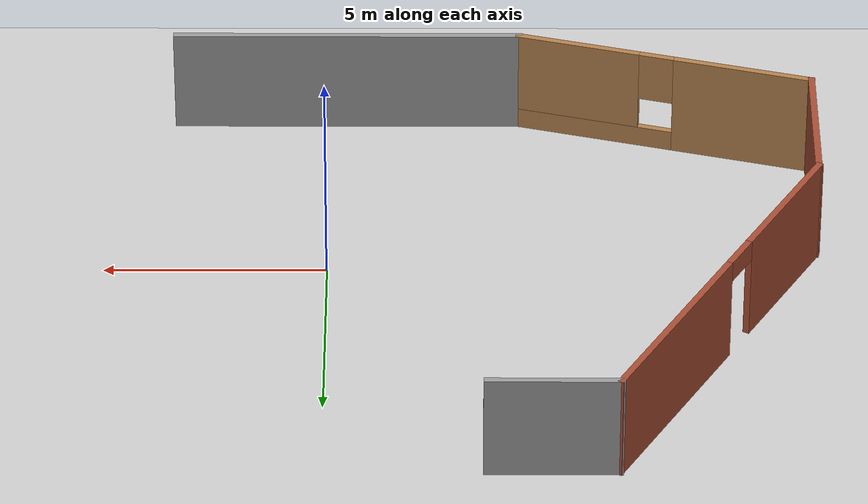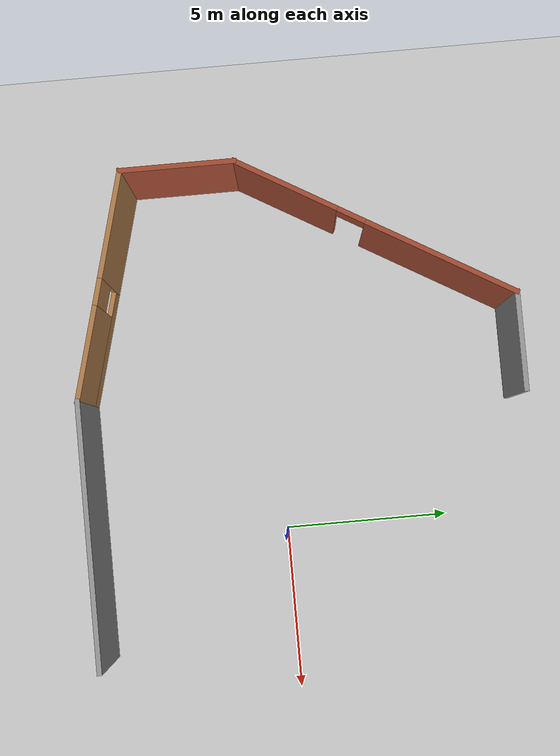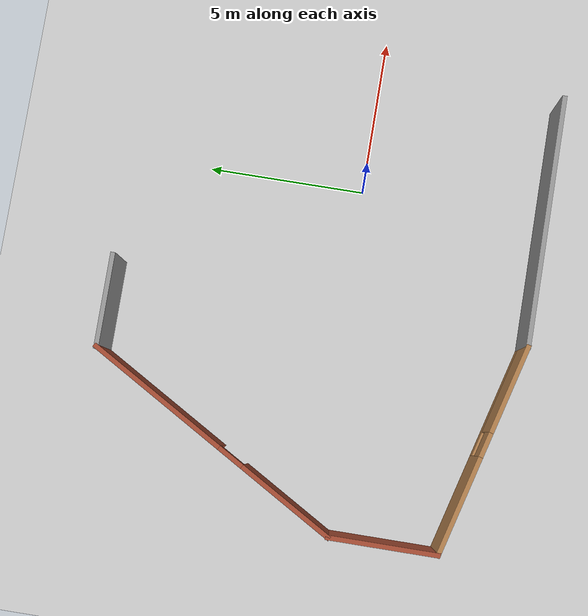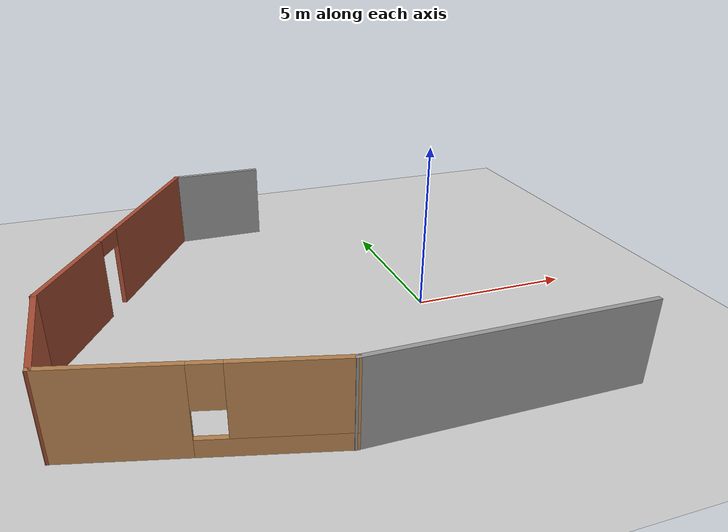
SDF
<sdf version="1.7">
 <world name="default">
  <light name="sun" type="directional">
   <pose>0 0 10 0 -0 0</pose>
   <diffuse>0.8 0.8 0.8 1</diffuse>
   <specular>0.2 0.2 0.2 1</specular>
   <attenuation>
    <range>1000</range>
    <constant>0.9</constant>
    <linear>0.01</linear>
    <quadratic>0.001</quadratic>
   </attenuation>
   <direction>-0.5 0.1 -0.9</direction>
   <spot><inner_angle>0</inner_angle><outer_angle>0</outer_angle><falloff>0</falloff></spot>
  </light>
  <model name="ground_plane">
   <static>1</static>
   <link name="link">
    <collision name="collision">
     <geometry><plane><normal>0 0 1</normal><size>100 100</size></plane></geometry>
     <surface><friction><ode><mu>100</mu><mu2>50</mu2></ode></friction></surface>
    </collision>
    <visual name="visual">
     <cast_shadows>0</cast_shadows>
     <geometry><plane><normal>0 0 1</normal><size>100 100</size></plane></geometry>
     <material>
      <script><uri>file://media/materials/scripts/gazebo.material</uri><name>Gazebo/Grey</name></script>
     </material>
    </visual>
   </link>
  </model>
  <gravity>0 0 -9.8</gravity>
  <magnetic_field>6e-06 2.3e-05 -4.2e-05</magnetic_field>
  <atmosphere type="adiabatic"/>
  <physics type="ode">
   <max_step_size>0.001</max_step_size>
   <real_time_factor>1</real_time_factor>
   <real_time_update_rate>1000</real_time_update_rate>
  </physics>
  <scene><ambient>0.4 0.4 0.4 1</ambient><background>0.7 0.7 0.7 1</background><shadows>1</shadows></scene>
  <audio><device>default</device></audio>
  <spherical_coordinates>
   <surface_model>EARTH_WGS84</surface_model>
   <latitude_deg>0</latitude_deg>
   <longitude_deg>0</longitude_deg>
   <elevation>0</elevation>
   <heading_deg>0</heading_deg>
  </spherical_coordinates>
  <model name="walls">
   <pose>-3.72163 0.781551 0 0 -0 0</pose>
   <link name="Wall_1">
    <collision name="Wall_1_Collision">
     <geometry><box><size>3 0.15 2.5</size></box></geometry>
     <pose>0 0 1.25 0 -0 0</pose>
    </collision>
    <visual name="Wall_1_Visual">
     <pose>0 0 1.25 0 -0 0</pose>
     <geometry><box><size>3 0.15 2.5</size></box></geometry>
     <material>
      <script><uri>file://media/materials/scripts/gazebo.material</uri><name>Gazebo/Grey</name></script>
      <ambient>1 1 1 1</ambient>
     </material>
     <meta><layer>0</layer></meta>
    </visual>
    <pose>-1.24457 6.49657 0 0 -0 3.14159</pose>
   </link>
   <link name="Wall_2">
    <pose>-4.94457 2.55616 0 0 -0 -2.0944</pose>
    <visual name="Wall_2_Visual_0">
     <pose>-2.15729 0 1.25 0 -0 0</pose>
     <geometry><box><size>4.93541 0.15 2.5</size></box></geometry>
     <material>
      <script><uri>file://media/materials/scripts/gazebo.material</uri><name>Gazebo/Bricks</name></script>
      <ambient>1 1 1 1</ambient>
     </material>
     <meta><layer>0</layer></meta>
    </visual>
    <collision name="Wall_2_Collision_0">
     <geometry><box><size>4.93541 0.15 2.5</size></box></geometry>
     <pose>-2.15729 0 1.25 0 -0 0</pose>
    </collision>
    <visual name="Wall_2_Visual_1">
     <pose>2.91771 0 1.25 0 -0 0</pose>
     <geometry><box><size>3.41459 0.15 2.5</size></box></geometry>
     <material>
      <script><uri>file://media/materials/scripts/gazebo.material</uri><name>Gazebo/Bricks</name></script>
      <ambient>1 1 1 1</ambient>
     </material>
     <meta><layer>0</layer></meta>
    </visual>
    <collision name="Wall_2_Collision_1">
     <geometry><box><size>3.41459 0.15 2.5</size></box></geometry>
     <pose>2.91771 0 1.25 0 -0 0</pose>
    </collision>
    <visual name="Wall_2_Visual_2">
     <pose>0.760413 0 2.25 0 -0 0</pose>
     <geometry><box><size>0.9 0.15 0.5</size></box></geometry>
     <material>
      <script><uri>file://media/materials/scripts/gazebo.material</uri><name>Gazebo/Bricks</name></script>
      <ambient>1 1 1 1</ambient>
     </material>
     <meta><layer>0</layer></meta>
    </visual>
    <collision name="Wall_2_Collision_2">
     <geometry><box><size>0.9 0.15 0.5</size></box></geometry>
     <pose>0.760413 0 2.25 0 -0 0</pose>
    </collision>
   </link>
   <link name="Wall_3">
    <collision name="Wall_3_Collision">
     <geometry><box><size>3.5 0.15 2.5</size></box></geometry>
     <pose>0 0 1.25 0 -0 0</pose>
    </collision>
    <visual name="Wall_3_Visual">
     <pose>0 0 1.25 0 -0 0</pose>
     <geometry><box><size>3.5 0.15 2.5</size></box></geometry>
     <material>
      <script><uri>file://media/materials/scripts/gazebo.material</uri><name>Gazebo/Bricks</name></script>
      <ambient>1 1 1 1</ambient>
     </material>
     <meta><layer>0</layer></meta>
    </visual>
    <pose>-7.21957 -3.05926 0 0 -0 -1.5708</pose>
   </link>
   <link name="Wall_4">
    <pose>-3.91127 -5.62071 0 0 -0 -0.261799</pose>
    <visual name="Wall_4_Visual_0">
     <pose>-1.86093 0 1.25 0 -0 0</pose>
     <geometry><box><size>3.27813 0.15 2.5</size></box></geometry>
     <material>
      <script><uri>file://media/materials/scripts/gazebo.material</uri><name>Gazebo/Wood</name></script>
      <ambient>1 1 1 1</ambient>
     </material>
     <meta><layer>0</layer></meta>
    </visual>
    <collision name="Wall_4_Collision_0">
     <geometry><box><size>3.27813 0.15 2.5</size></box></geometry>
     <pose>-1.86093 0 1.25 0 -0 0</pose>
    </collision>
    <visual name="Wall_4_Visual_1">
     <pose>1.63907 0 0.25 0 -0 0</pose>
     <geometry><box><size>3.72187 0.15 0.5</size></box></geometry>
     <material>
      <script><uri>file://media/materials/scripts/gazebo.material</uri><name>Gazebo/Wood</name></script>
      <ambient>1 1 1 1</ambient>
     </material>
     <meta><layer>0</layer></meta>
    </visual>
    <collision name="Wall_4_Collision_1">
     <geometry><box><size>3.72187 0.15 0.5</size></box></geometry>
     <pose>1.63907 0 0.25 0 -0 0</pose>
    </collision>
    <visual name="Wall_4_Visual_2">
     <pose>2.03907 0 1.5 0 -0 0</pose>
     <geometry><box><size>2.92186 0.15 2</size></box></geometry>
     <material>
      <script><uri>file://media/materials/scripts/gazebo.material</uri><name>Gazebo/Wood</name></script>
      <ambient>1 1 1 1</ambient>
     </material>
     <meta><layer>0</layer></meta>
    </visual>
    <collision name="Wall_4_Collision_2">
     <geometry><box><size>2.92186 0.15 2</size></box></geometry>
     <pose>2.03907 0 1.5 0 -0 0</pose>
    </collision>
    <visual name="Wall_4_Visual_3">
     <pose>0.178135 0 1.9 0 -0 0</pose>
     <geometry><box><size>0.8 0.15 1.2</size></box></geometry>
     <material>
      <script><uri>file://media/materials/scripts/gazebo.material</uri><name>Gazebo/Wood</name></script>
      <ambient>1 1 1 1</ambient>
     </material>
     <meta><layer>0</layer></meta>
    </visual>
    <collision name="Wall_4_Collision_3">
     <geometry><box><size>0.8 0.15 1.2</size></box></geometry>
     <pose>0.178135 0 1.9 0 -0 0</pose>
    </collision>
   </link>
   <link name="Wall_5">
    <collision name="Wall_5_Collision">
     <geometry><box><size>8 0.15 2.5</size></box></geometry>
     <pose>0 0 1.25 0 -0 0</pose>
    </collision>
    <visual name="Wall_5_Visual">
     <pose>0 0 1.25 0 -0 0</pose>
     <geometry><box><size>8 0.15 2.5</size></box></geometry>
     <material>
      <script><uri>file://media/materials/scripts/gazebo.material</uri><name>Gazebo/Grey</name></script>
      <ambient>1 1 1 1</ambient>
     </material>
     <meta><layer>0</layer></meta>
    </visual>
    <pose>3.32202 -6.50717 0 0 -0 0</pose>
   </link>
   <static>1</static>
  </model>
 </world>
</sdf>
